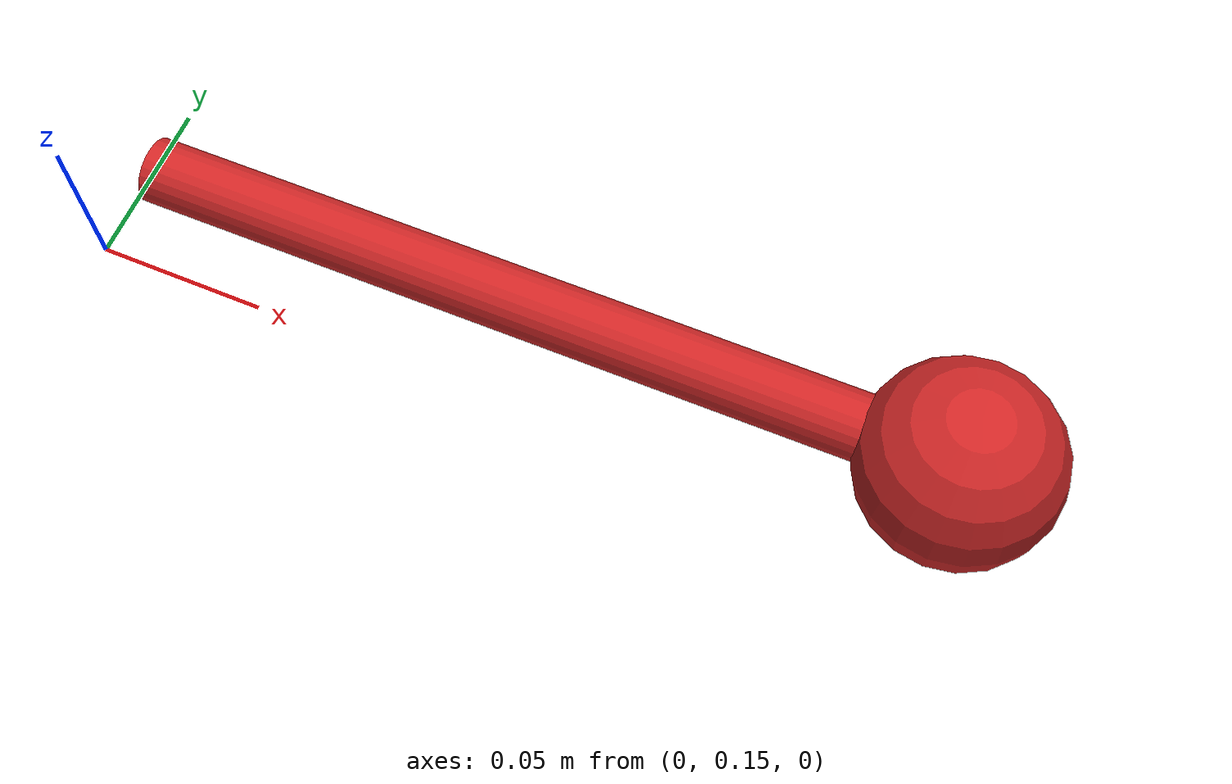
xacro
<?xml version="1.0"?>
<robot xmlns:xacro="http://ros.org/wiki/xacro">

    <!--File includes-->
    <xacro:include filename="$(find simple_models_description)/urdf/transmission.urdf.xacro" />
    <joint name="pendulum_joint" type="continuous">
      <origin xyz="0 0.18 0.0" rpy="0 0 0"/>
      <axis xyz="0 0 1"/>
      <parent link="world"/>
      <child link="pendulum_link"/>
      <dynamics damping="0.01"/>
      <limit effort="300.0" velocity="50.0" />
      <safety_controller k_velocity="0"/>
    </joint>

    <link name="world">
      <inertial>
        <mass value="0" />
        <origin xyz="0.0 0.0 0" rpy="0 0 0" />
        <inertia  ixx="0" ixy="0" ixz="0"
                  iyy="0" iyz="0"
                  izz="0" />
      </inertial>
    </link>

    <link name="pendulum_link">
      <inertial>
        <mass value="0.05" />
        <origin xyz="0.25 0 0" rpy="0 0 0" />
        <inertia  ixx="0.001" ixy="0.0" ixz="0.0"
                  iyy="0.001" iyz="0.0"
                  izz="0.001" />
      </inertial>
      <visual>
        <origin xyz="0.25 0 0" rpy="0 0 0" />
        <geometry>
          <sphere radius="0.03"/>
        </geometry>
        <material name="Red" />
      </visual>
      <collision>
        <origin xyz="0 0 0.25" rpy="0 0 0" />
        <geometry>
          <sphere radius="0.03"/>
        </geometry>
      </collision>
    </link>

    <joint name="pendulum_fixed_joint" type="fixed">
      <origin xyz="0 0 0" rpy="0 0 0" />
      <parent link="pendulum_link"/>
      <child link="pendulum_rod_link"/>
    </joint>

    <link name="pendulum_rod_link">
      <inertial>
        <mass value="0.001" />
        <origin xyz="0 0 0" rpy="0 0 0" />
        <inertia  ixx="0.001" ixy="0.0" ixz="0.0"
                  iyy="0.001" iyz="0.0"
                  izz="0.001" />
      </inertial>
      <visual>
        <origin xyz="0.125 0 0" rpy="0 1.5708 0" />
        <geometry>
          <cylinder radius="0.01" length="0.25"/>
        </geometry>
        <material name="Red" />
      </visual>
      <collision>
        <origin xyz="0 0 0.125" rpy="0 0 0" />
        <geometry>
          <cylinder radius="0.01" length="0.25"/>
        </geometry>
      </collision>
    </link>

    <xacro:simple_transmission name="pendulum" reduction="1.0" />
</robot>
